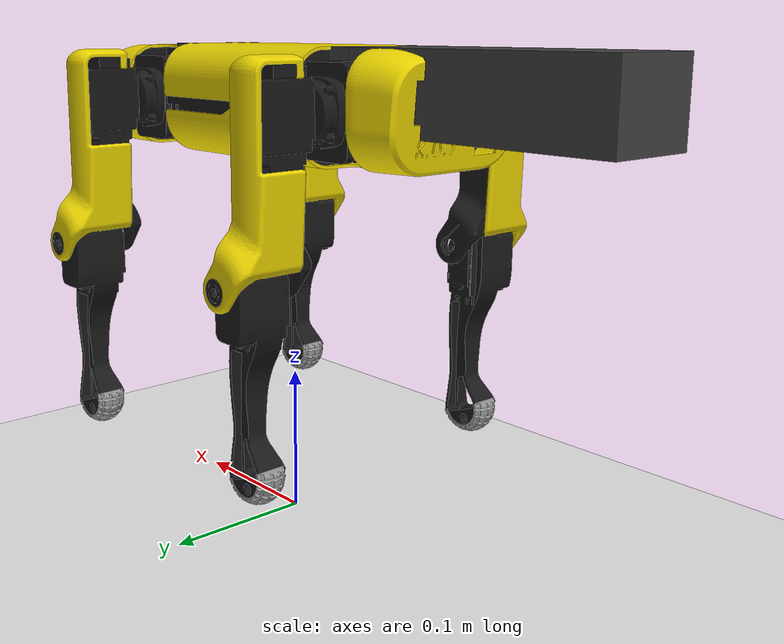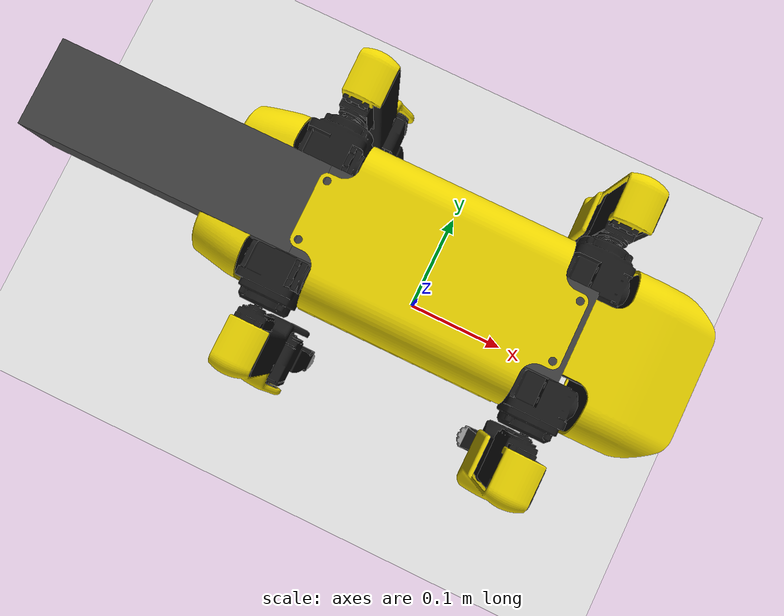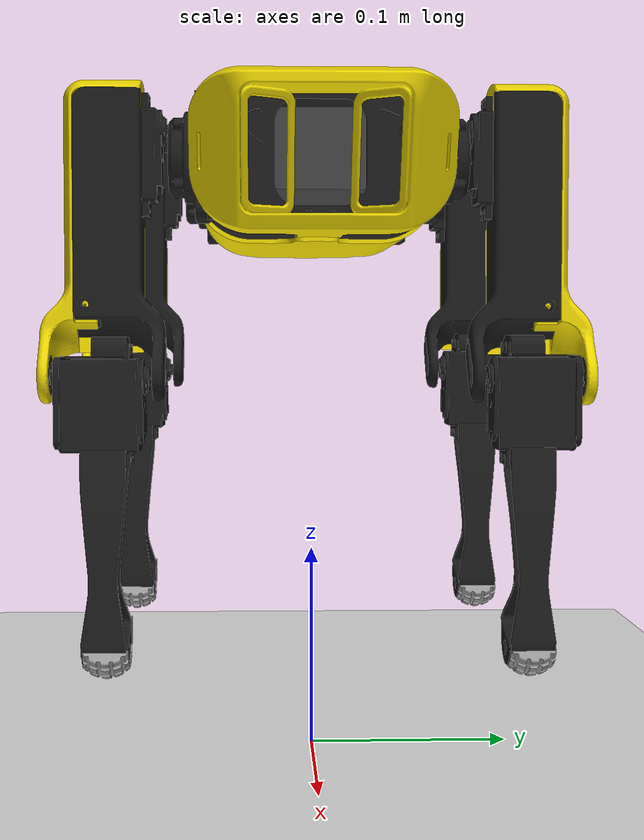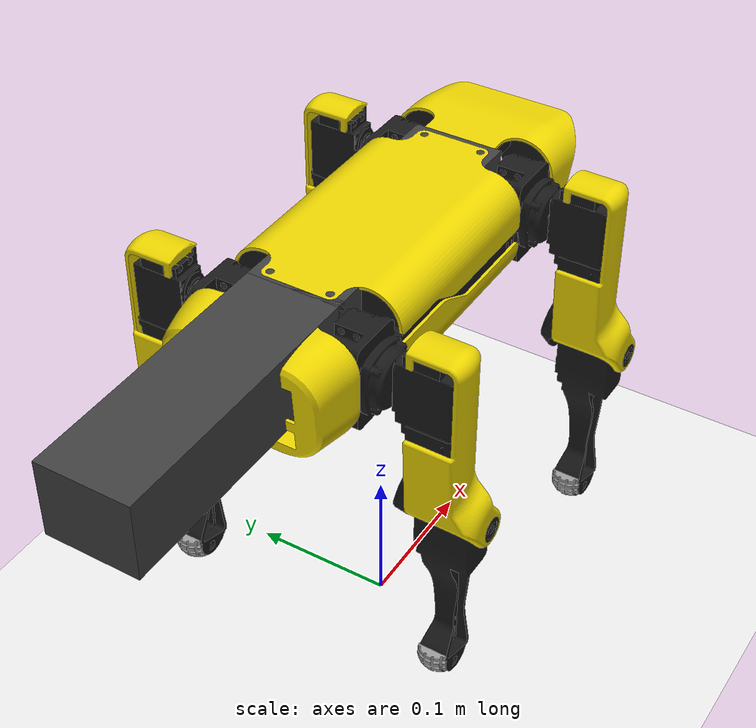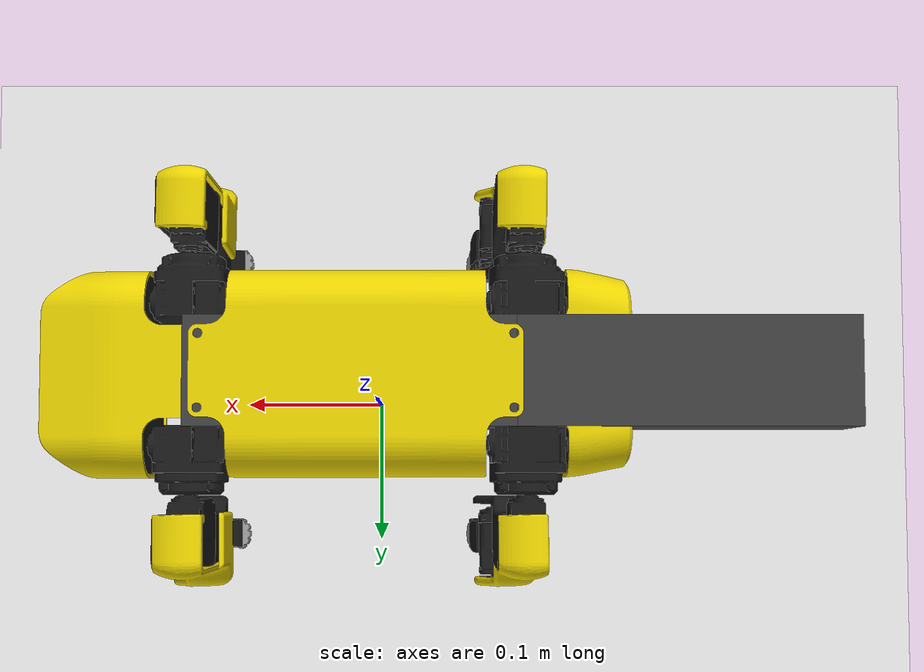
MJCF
<mujoco model="SpotMicroAI_mesh_only">
  <compiler angle="radian" coordinate="local" inertiafromgeom="true" meshdir="meshes"/>
  <option timestep="0.002" gravity="0 0 -9.81" integrator="RK4"/>
  <size njmax="4000" nconmax="2000"/>

  <default>
    <joint damping="0.6" armature="0.01" limited="true"/>
    <geom density = "450" friction="1.0 0.005 0.0001" solref="0.02 1" solimp="0.9 0.95 0.001"/>
  </default>

  <asset>
    <!-- Meshes: filenames match your URDF -->
    <mesh name="mainbody"    file="mainbody.stl"    scale="0.001 0.001 0.001"/>
    <mesh name="backpart"    file="backpart.stl"    scale="0.001 0.001 0.001"/>
    <mesh name="frontpart"   file="frontpart.stl"   scale="0.001 0.001 0.001"/>

    <mesh name="lshoulder"   file="lshoulder.stl"   scale="0.001 0.001 0.001"/>
    <mesh name="rshoulder"   file="rshoulder.stl"   scale="0.001 0.001 0.001"/>

    <mesh name="larm_cover"  file="larm_cover.stl"  scale="0.001 0.001 0.001"/>
    <mesh name="rarm_cover"  file="rarm_cover.stl"  scale="0.001 0.001 0.001"/>

    <mesh name="larm"        file="larm.stl"        scale="0.001 0.001 0.001"/>
    <mesh name="rarm"        file="rarm.stl"        scale="0.001 0.001 0.001"/>

    <mesh name="lfoot"       file="lfoot.stl"       scale="0.001 0.001 0.001"/>
    <mesh name="rfoot"       file="rfoot.stl"       scale="0.001 0.001 0.001"/>

    <mesh name="foot"        file="foot.stl"        scale="0.001 0.001 0.001"/>

    <material name="yellow" rgba="0.92 0.83 0.0 1"/>
    <material name="black"  rgba="0.10 0.10 0.10 1"/>
    <material name="grey"   rgba="0.60 0.60 0.60 1"/>
  </asset>

  <worldbody>
    <light pos="0 0 2" dir="0 0 -1"/>
    <geom name="floor" type="plane" size="5 5 0.1" rgba="0.92 0.92 0.92 1"/>

    <body name="base_link" pos="0 0 0.30">
      <freejoint/>
            <!-- ================= REAR PAYLOAD (cuboid prim) ================= -->
      <!-- Body length ~ 0.186m (front/rear shoulder at +/-0.093). Half-length ~ 0.093m.
           MuJoCo box "size" is HALF-EXTENTS, so x half-extent ~0.0465 gives ~0.093m total length. -->
      <geom name="rear_payload"
            type="box"
            pos="-0.18 0.0 0.0"
            size="0.093 0.030 0.025"
            mass="0.5"
            rgba="0.25 0.25 0.25 1"
            contype="0" conaffinity="0"/>

      <geom name="battery_and_electronics"
            type="box"
            pos="0.0 0.0 0.0"
            size="0.093 0.030 0.025"
            mass="1.0"
            rgba="0.25 0.25 0.25 1"
            contype="0" conaffinity="0"/>
      <!-- base_inertia visual -->
      <geom name="base_inertia_vis" type="mesh" mesh="mainbody"
            pos="0.0425 0.055 -0.02" euler="0 0 3.1416"
            material="black"/>

      <!-- rear_link visual -->
      <geom name="rear_link_vis" type="mesh" mesh="backpart"
            pos="0.042 0.055 -0.0195" euler="0 0 3.1416"
            material="yellow"/>

      <!-- front_link visual -->
      <geom name="front_link_vis" type="mesh" mesh="frontpart"
            pos="0.042 0.055 -0.0205" euler="0 0 3.1416"
            material="yellow"/>

      <!-- ================= FRONT LEFT ================= -->
      <body name="front_left_shoulder_link" pos="0.093 0.0395 0">
        <joint name="front_left_shoulder" type="hinge" axis="1 0 0" range="-0.548 0.548"/>

        <geom name="fl_shoulder_vis" type="mesh" mesh="lshoulder"
              pos="0.135 0.0163 -0.0195" euler="0 0 3.1416"
              material="black"/>

        <body name="front_left_leg_link" pos="0 0.055 0">
          <joint name="front_left_leg" type="hinge" axis="0 1 0" range="-2.666 1.548"/>

          <geom name="fl_arm_vis" type="mesh" mesh="larm"
                pos="0.134 -0.04 -0.0095" euler="0 0 3.1416"
                material="black"/>
          <geom name="fl_arm_cover_vis" type="mesh" mesh="larm_cover"
                pos="0.134 -0.04 -0.0095" euler="0 0 3.1416"
                material="yellow"/>

          <body name="front_left_foot_link" pos="0.014 0 -0.109">
            <joint name="front_left_foot" type="hinge" axis="0 1 0" range="-2.59 0.1"/>

            <geom name="fl_shin_vis" type="mesh" mesh="lfoot"
                  pos="0.1195 -0.04 0.099" euler="0 0 3.1416"
                  material="black"/>

            <body name="front_left_toe_link" pos="0 0 -0.13">
              <geom name="fl_toe_vis" type="mesh" mesh="foot"
                    pos="0 -0.01 0.015" euler="0 0.40010 0"
                    material="grey"/>
            </body>
          </body>
        </body>
      </body>

      <!-- ================= FRONT RIGHT ================= -->
      <body name="front_right_shoulder_link" pos="0.093 -0.0395 0">
        <joint name="front_right_shoulder" type="hinge" axis="1 0 0" range="-0.548 0.548"/>

        <geom name="fr_shoulder_vis" type="mesh" mesh="rshoulder"
              pos="0.135 0.0938 -0.0205" euler="0 0 3.1416"
              material="black"/>

        <body name="front_right_leg_link" pos="0 -0.055 0">
          <joint name="front_right_leg" type="hinge" axis="0 1 0" range="-2.666 1.548"/>

          <geom name="fr_arm_vis" type="mesh" mesh="rarm"
                pos="0.134 0.149 -0.0095" euler="0 0 3.1416"
                material="black"/>
          <geom name="fr_arm_cover_vis" type="mesh" mesh="rarm_cover"
                pos="0.134 0.149 -0.0095" euler="0 0 3.1416"
                material="yellow"/>

          <body name="front_right_foot_link" pos="0.014 0 -0.109">
            <joint name="front_right_foot" type="hinge" axis="0 1 0" range="-2.59 0.1"/>

            <geom name="fr_shin_vis" type="mesh" mesh="rfoot"
                  pos="0.1195 0.149 0.099" euler="0 0 3.1416"
                  material="black"/>

            <body name="front_right_toe_link" pos="0 0 -0.13">
              <geom name="fr_toe_vis" type="mesh" mesh="foot"
                    pos="0 -0.01 0.015" euler="0 0.40010 0"
                    material="grey"/>
            </body>
          </body>
        </body>
      </body>

      <!-- ================= REAR LEFT ================= -->
      <body name="rear_left_shoulder_link" pos="-0.093 0.0395 0">
        <joint name="rear_left_shoulder" type="hinge" axis="1 0 0" range="-0.548 0.548"/>

        <geom name="rl_shoulder_vis" type="mesh" mesh="lshoulder"
              pos="0.135 0.0163 -0.0195" euler="0 0 3.1416"
              material="black"/>

        <body name="rear_left_leg_link" pos="0 0.055 0">
          <joint name="rear_left_leg" type="hinge" axis="0 1 0" range="-2.666 1.548"/>

          <geom name="rl_arm_vis" type="mesh" mesh="larm"
                pos="0.134 -0.04 -0.0095" euler="0 0 3.1416"
                material="black"/>
          <geom name="rl_arm_cover_vis" type="mesh" mesh="larm_cover"
                pos="0.134 -0.04 -0.0095" euler="0 0 3.1416"
                material="yellow"/>

          <body name="rear_left_foot_link" pos="0.014 0 -0.109">
            <joint name="rear_left_foot" type="hinge" axis="0 1 0" range="-2.59 0.1"/>

            <geom name="rl_shin_vis" type="mesh" mesh="lfoot"
                  pos="0.1195 -0.04 0.099" euler="0 0 3.1416"
                  material="black"/>

            <body name="rear_left_toe_link" pos="0 0 -0.13">
              <geom name="rl_toe_vis" type="mesh" mesh="foot"
                    pos="0 -0.01 0.015" euler="0 0.40010 0"
                    material="grey"/>
            </body>
          </body>
        </body>
      </body>

      <!-- ================= REAR RIGHT ================= -->
      <body name="rear_right_shoulder_link" pos="-0.093 -0.0395 0">
        <joint name="rear_right_shoulder" type="hinge" axis="1 0 0" range="-0.548 0.548"/>

        <geom name="rr_shoulder_vis" type="mesh" mesh="rshoulder"
              pos="0.135 0.0938 -0.0205" euler="0 0 3.1416"
              material="black"/>

        <body name="rear_right_leg_link" pos="0 -0.055 0">
          <joint name="rear_right_leg" type="hinge" axis="0 1 0" range="-2.666 1.548"/>

          <geom name="rr_arm_vis" type="mesh" mesh="rarm"
                pos="0.134 0.149 -0.0095" euler="0 0 3.1416"
                material="black"/>
          <geom name="rr_arm_cover_vis" type="mesh" mesh="rarm_cover"
                pos="0.134 0.149 -0.0095" euler="0 0 3.1416"
                material="yellow"/>

          <body name="rear_right_foot_link" pos="0.014 0 -0.109">
            <joint name="rear_right_foot" type="hinge" axis="0 1 0" range="-2.59 0.1"/>

            <geom name="rr_shin_vis" type="mesh" mesh="rfoot"
                  pos="0.1195 0.149 0.099" euler="0 0 3.1416"
                  material="black"/>

            <body name="rear_right_toe_link" pos="0 0 -0.13">
              <geom name="rr_toe_vis" type="mesh" mesh="foot"
                    pos="0 -0.01 0.015" euler="0 0.40010 0"
                    material="grey"/>
            </body>
          </body>
        </body>
      </body>

    </body>
  </worldbody>

    <actuator>
    <!-- RDS3235 @ 7.4V: ~35 kg*cm ~= 3.43 N*m torque cap -->
    <!-- kp units: N*m/rad (hinge joints in radians) -->

    <!-- SHOULDERS (ab/ad) - slightly softer -->
    <position name="p_fl_shoulder" joint="front_left_shoulder"
              kp="15" ctrlrange="-0.548 0.548"
              forcelimited="true" forcerange="-3.43 3.43"/>
    <position name="p_fr_shoulder" joint="front_right_shoulder"
              kp="15" ctrlrange="-0.548 0.548"
              forcelimited="true" forcerange="-3.43 3.43"/>
    <position name="p_rl_shoulder" joint="rear_left_shoulder"
              kp="15" ctrlrange="-0.548 0.548"
              forcelimited="true" forcerange="-3.43 3.43"/>
    <position name="p_rr_shoulder" joint="rear_right_shoulder"
              kp="15" ctrlrange="-0.548 0.548"
              forcelimited="true" forcerange="-3.43 3.43"/>

    <!-- HIPS (pitch) -->
    <position name="p_fl_hip" joint="front_left_leg"
              kp="20" ctrlrange="-2.666 1.548"
              forcelimited="true" forcerange="-3.43 3.43"/>
    <position name="p_fr_hip" joint="front_right_leg"
              kp="20" ctrlrange="-2.666 1.548"
              forcelimited="true" forcerange="-3.43 3.43"/>
    <position name="p_rl_hip" joint="rear_left_leg"
              kp="20" ctrlrange="-2.666 1.548"
              forcelimited="true" forcerange="-3.43 3.43"/>
    <position name="p_rr_hip" joint="rear_right_leg"
              kp="20" ctrlrange="-2.666 1.548"
              forcelimited="true" forcerange="-3.43 3.43"/>

    <!-- KNEES -->
    <position name="p_fl_knee" joint="front_left_foot"
              kp="20" ctrlrange="-2.59 0.1"
              forcelimited="true" forcerange="-3.43 3.43"/>
    <position name="p_fr_knee" joint="front_right_foot"
              kp="20" ctrlrange="-2.59 0.1"
              forcelimited="true" forcerange="-3.43 3.43"/>
    <position name="p_rl_knee" joint="rear_left_foot"
              kp="20" ctrlrange="-2.59 0.1"
              forcelimited="true" forcerange="-3.43 3.43"/>
    <position name="p_rr_knee" joint="rear_right_foot"
              kp="20" ctrlrange="-2.59 0.1"
              forcelimited="true" forcerange="-3.43 3.43"/>
  </actuator>
</mujoco>
